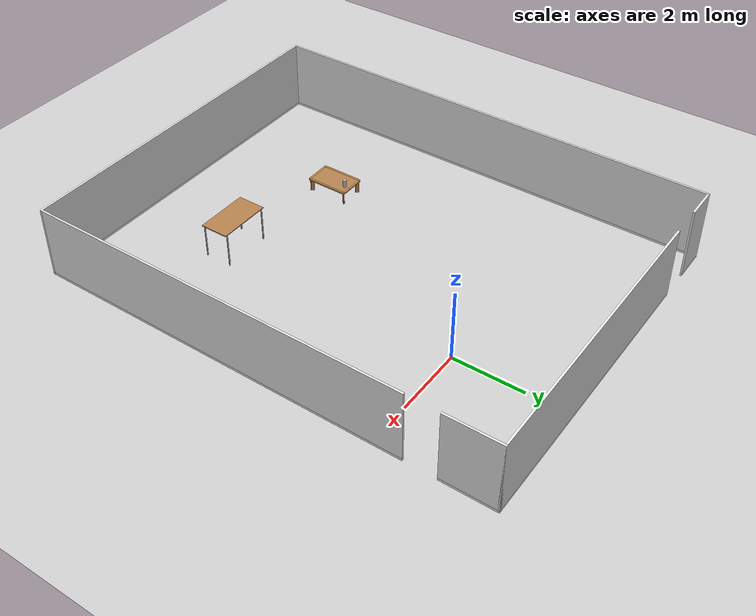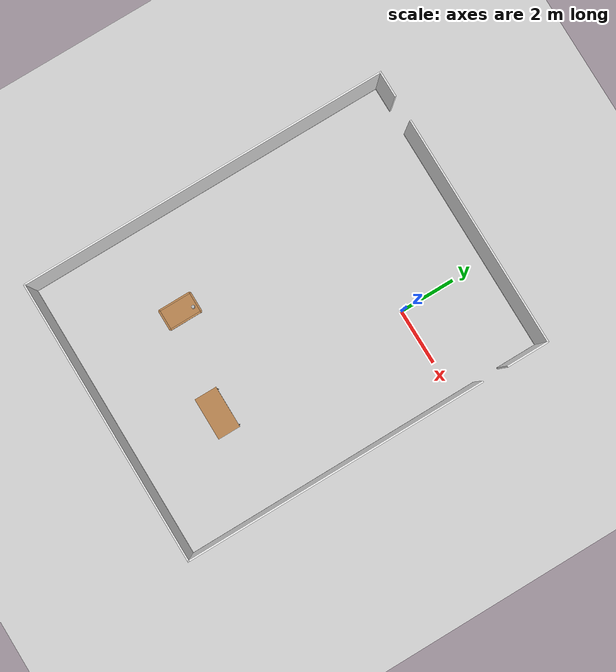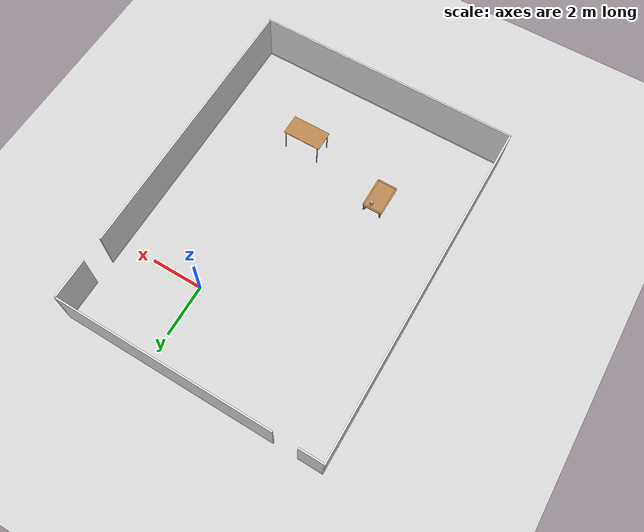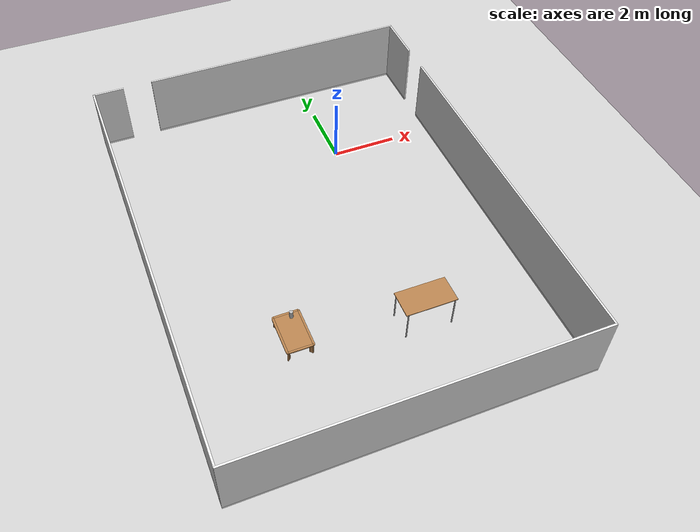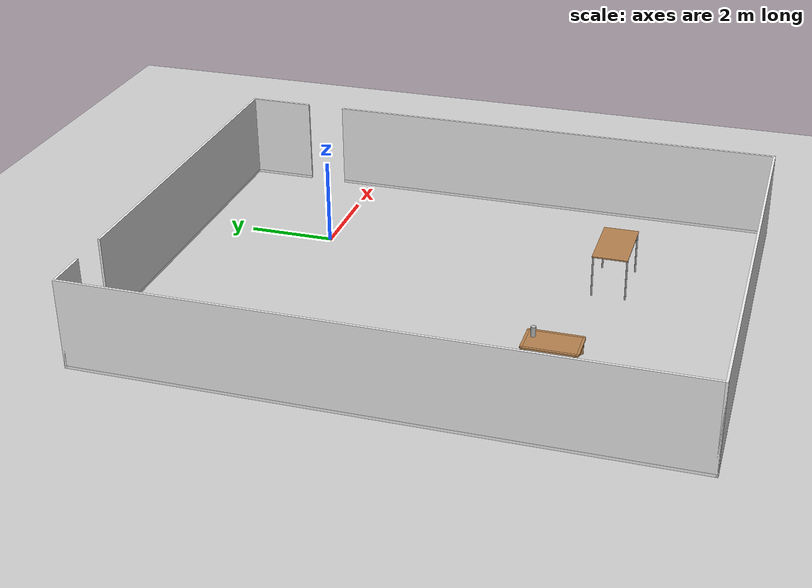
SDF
<sdf version="1.6">
 <world name="default">
  <light name="sun" type="directional">
   <pose>0 0 10 0 -0 0</pose>
   <diffuse>0.8 0.8 0.8 1</diffuse>
   <specular>0.2 0.2 0.2 1</specular>
   <attenuation>
    <range>1000</range>
    <constant>0.9</constant>
    <linear>0.01</linear>
    <quadratic>0.001</quadratic>
   </attenuation>
   <direction>-0.5 0.1 -0.9</direction>
  </light>
  <model name="ground_plane">
   <static>1</static>
   <link name="link">
    <collision name="collision">
     <geometry><plane><normal>0 0 1</normal><size>100 100</size></plane></geometry>
     <surface>
      <contact><collide_bitmask>65535</collide_bitmask></contact>
      <friction><ode><mu>100</mu><mu2>50</mu2></ode></friction>
     </surface>
    </collision>
    <visual name="visual">
     <cast_shadows>0</cast_shadows>
     <geometry><plane><normal>0 0 1</normal><size>100 100</size></plane></geometry>
     <material>
      <script><uri>file://media/materials/scripts/gazebo.material</uri><name>Gazebo/Grey</name></script>
     </material>
    </visual>
   </link>
  </model>
  <gravity>0 0 -9.8</gravity>
  <magnetic_field>6e-06 2.3e-05 -4.2e-05</magnetic_field>
  <atmosphere type="adiabatic"/>
  <physics name="default_physics" default="0" type="ode">
   <max_step_size>0.001</max_step_size>
   <real_time_factor>1</real_time_factor>
   <real_time_update_rate>1000</real_time_update_rate>
  </physics>
  <scene><ambient>0.4 0.4 0.4 1</ambient><background>0.7 0.7 0.7 1</background><shadows>1</shadows></scene>
  <spherical_coordinates>
   <surface_model>EARTH_WGS84</surface_model>
   <latitude_deg>0</latitude_deg>
   <longitude_deg>0</longitude_deg>
   <elevation>0</elevation>
   <heading_deg>0</heading_deg>
  </spherical_coordinates>
  <model name="full_outside_wall">
   <link name="link">
    <inertial>
     <mass>50</mass>
     <inertia><ixx>1</ixx><ixy>0</ixy><ixz>0</ixz><iyy>1</iyy><iyz>0</iyz><izz>1</izz></inertia>
    </inertial>
    <visual name="x00_13y00_bottom_frame">
     <pose>5.0375 -0.0275 0.05 0 -0 0</pose>
     <geometry><box><size>10.185 0.055 0.1</size></box></geometry>
     <material>
      <script><uri>model://base_materials/color/scripts</uri><name>hsr_color/white</name></script>
     </material>
    </visual>
    <collision name="x00_13y00_collision_bottom_frame">
     <pose>5.0375 -0.0275 0.05 0 -0 0</pose>
     <geometry><box><size>10.185 0.055 0.1</size></box></geometry>
    </collision>
    <visual name="wall_x00_13y00">
     <pose>5.0375 -0.0275 1.095 0 -0 0</pose>
     <geometry><box><size>10.185 0.055 1.99</size></box></geometry>
     <material>
      <script>
       <uri>model://base_materials/wall/scripts</uri>
       <uri>model://base_materials/wall/textures</uri>
       <name>wall/white_noise</name>
      </script>
     </material>
    </visual>
    <collision name="wall_x00_13y00">
     <pose>5.0375 -0.002 1.095 0 -0 0</pose>
     <geometry><box><size>10.08 0.055 1.99</size></box></geometry>
    </collision>
    <visual name="x00y00_15_bottom_frame">
     <pose>-0.0275 6.59 0.05 0 -0 0</pose>
     <geometry><box><size>0.055 13.29 0.1</size></box></geometry>
     <material>
      <script><uri>model://base_materials/color/scripts</uri><name>hsr_color/white</name></script>
     </material>
    </visual>
    <collision name="x00y00_15_collision_bottom_frame">
     <pose>-0.0275 6.59 0.05 0 -0 0</pose>
     <geometry><box><size>0.055 13.29 0.1</size></box></geometry>
    </collision>
    <visual name="wall_x00y00_15">
     <pose>-0.0275 6.59 1.095 0 -0 0</pose>
     <geometry><box><size>0.055 13.29 1.99</size></box></geometry>
     <material>
      <script>
       <uri>model://base_materials/wall/scripts</uri>
       <uri>model://base_materials/wall/textures</uri>
       <name>wall/white_noise</name>
      </script>
     </material>
    </visual>
    <collision name="wall_x00y00_x00y15">
     <pose>-0.002 6.59 1.095 0 -0 0</pose>
     <geometry><box><size>0.002 13.29 1.99</size></box></geometry>
    </collision>
    <visual name="x13y00_12_bottom_frame">
     <pose>10.1025 5.3725 0.05 0 -0 0</pose>
     <geometry><box><size>0.055 10.855 0.1</size></box></geometry>
     <material>
      <script><uri>model://base_materials/color/scripts</uri><name>hsr_color/white</name></script>
     </material>
    </visual>
    <collision name="x13y00_12_collision_bottom_frame">
     <pose>10.1025 5.3725 0.05 0 -0 0</pose>
     <geometry><box><size>0.055 10.855 0.1</size></box></geometry>
    </collision>
    <visual name="wall_x13y00_12">
     <pose>10.1025 5.3725 1.095 0 -0 0</pose>
     <geometry><box><size>0.055 10.855 1.99</size></box></geometry>
     <material>
      <script>
       <uri>model://base_materials/wall/scripts</uri>
       <uri>model://base_materials/wall/textures</uri>
       <name>wall/white_noise</name>
      </script>
     </material>
    </visual>
    <collision name="wall_x13y00_12">
     <pose>10.1025 5.3725 1.095 0 -0 0</pose>
     <geometry><box><size>0.055 10.855 1.99</size></box></geometry>
    </collision>
    <visual name="x13y14_16_bottom_frame">
     <pose>10.1025 12.4675 0.05 0 -0 0</pose>
     <geometry><box><size>0.055 1.535 0.1</size></box></geometry>
     <material>
      <script><uri>model://base_materials/color/scripts</uri><name>hsr_color/white</name></script>
     </material>
    </visual>
    <collision name="x13y14_16_collision_bottom_frame">
     <pose>10.1025 12.4675 0.05 0 -0 0</pose>
     <geometry><box><size>0.055 1.535 0.1</size></box></geometry>
    </collision>
    <visual name="wall_x13y14_x13y16">
     <pose>10.1025 12.4675 1.095 0 -0 0</pose>
     <geometry><box><size>0.055 1.535 1.99</size></box></geometry>
     <material>
      <script>
       <uri>model://base_materials/wall/scripts</uri>
       <uri>model://base_materials/wall/textures</uri>
       <name>wall/white_noise</name>
      </script>
     </material>
    </visual>
    <collision name="wall_x13y14_x13y16">
     <pose>10.1025 12.4675 1.095 0 -0 0</pose>
     <geometry><box><size>0.055 1.535 1.99</size></box></geometry>
    </collision>
    <visual name="x00_01y16_bottom_frame">
     <pose>0.4225 13.2075 0.05 0 -0 0</pose>
     <geometry><box><size>0.955 0.055 0.1</size></box></geometry>
     <material>
      <script><uri>model://base_materials/color/scripts</uri><name>hsr_color/white</name></script>
     </material>
    </visual>
    <collision name="x00_01y16_collision_bottom_frame">
     <pose>0.4225 13.2075 0.05 0 -0 0</pose>
     <geometry><box><size>0.955 0.055 0.1</size></box></geometry>
    </collision>
    <visual name="wall_x00_01y16">
     <pose>0.4225 13.2075 1.095 0 -0 0</pose>
     <geometry><box><size>0.955 0.055 1.99</size></box></geometry>
     <material>
      <script>
       <uri>model://base_materials/wall/scripts</uri>
       <uri>model://base_materials/wall/textures</uri>
       <name>wall/white_noise</name>
      </script>
     </material>
    </visual>
    <collision name="wall_x00_x01y16">
     <pose>0.4225 13.2075 1.095 0 -0 0</pose>
     <geometry><box><size>0.955 0.055 1.99</size></box></geometry>
    </collision>
    <visual name="x03_13y16_bottom_frame">
     <pose>5.965 13.2075 0.05 0 -0 0</pose>
     <geometry><box><size>8.33 0.05 0.1</size></box></geometry>
     <material>
      <script><uri>model://base_materials/color/scripts</uri><name>hsr_color/white</name></script>
     </material>
    </visual>
    <collision name="x03_13y16_collision_bottom_frame">
     <pose>5.965 13.2075 0.05 0 -0 0</pose>
     <geometry><box><size>8.33 0.05 0.1</size></box></geometry>
    </collision>
    <visual name="wall_x03_13y16">
     <pose>5.965 13.2075 1.095 0 -0 0</pose>
     <geometry><box><size>8.33 0.055 1.99</size></box></geometry>
     <material>
      <script>
       <uri>model://base_materials/wall/scripts</uri>
       <uri>model://base_materials/wall/textures</uri>
       <name>wall/white_noise</name>
      </script>
     </material>
    </visual>
    <collision name="wall_x03_13y16">
     <pose>5.965 13.2075 1.095 0 -0 0</pose>
     <geometry><box><size>8.33 0.055 1.99</size></box></geometry>
    </collision>
    <velocity_decay><linear>0</linear><angular>0</angular></velocity_decay>
   </link>
   <static>1</static>
   <pose>-6.84092 -9.99297 -0.050783 0 -0 0</pose>
  </model>
  <model name="table">
   <static>1</static>
   <link name="link">
    <collision name="surface">
     <pose>0 0 1 0 -0 0</pose>
     <geometry><box><size>1.5 0.8 0.03</size></box></geometry>
     <surface><friction><ode><mu>0.6</mu><mu2>0.6</mu2></ode></friction></surface>
    </collision>
    <visual name="visual1">
     <pose>0 0 1 0 -0 0</pose>
     <geometry><box><size>1.5 0.8 0.03</size></box></geometry>
     <material>
      <script><uri>file://media/materials/scripts/gazebo.material</uri><name>Gazebo/Wood</name></script>
     </material>
    </visual>
    <collision name="front_left_leg">
     <pose>0.68 0.38 0.5 0 -0 0</pose>
     <geometry><cylinder><radius>0.02</radius><length>1</length></cylinder></geometry>
    </collision>
    <visual name="front_left_leg">
     <pose>0.68 0.38 0.5 0 -0 0</pose>
     <geometry><cylinder><radius>0.02</radius><length>1</length></cylinder></geometry>
     <material>
      <script><uri>file://media/materials/scripts/gazebo.material</uri><name>Gazebo/Grey</name></script>
     </material>
    </visual>
    <collision name="front_right_leg">
     <pose>0.68 -0.38 0.5 0 -0 0</pose>
     <geometry><cylinder><radius>0.02</radius><length>1</length></cylinder></geometry>
    </collision>
    <visual name="front_right_leg">
     <pose>0.68 -0.38 0.5 0 -0 0</pose>
     <geometry><cylinder><radius>0.02</radius><length>1</length></cylinder></geometry>
     <material>
      <script><uri>file://media/materials/scripts/gazebo.material</uri><name>Gazebo/Grey</name></script>
     </material>
    </visual>
    <collision name="back_right_leg">
     <pose>-0.68 -0.38 0.5 0 -0 0</pose>
     <geometry><cylinder><radius>0.02</radius><length>1</length></cylinder></geometry>
    </collision>
    <visual name="back_right_leg">
     <pose>-0.68 -0.38 0.5 0 -0 0</pose>
     <geometry><cylinder><radius>0.02</radius><length>1</length></cylinder></geometry>
     <material>
      <script><uri>file://media/materials/scripts/gazebo.material</uri><name>Gazebo/Grey</name></script>
     </material>
    </visual>
    <collision name="back_left_leg">
     <pose>-0.68 0.38 0.5 0 -0 0</pose>
     <geometry><cylinder><radius>0.02</radius><length>1</length></cylinder></geometry>
    </collision>
    <visual name="back_left_leg">
     <pose>-0.68 0.38 0.5 0 -0 0</pose>
     <geometry><cylinder><radius>0.02</radius><length>1</length></cylinder></geometry>
     <material>
      <script><uri>file://media/materials/scripts/gazebo.material</uri><name>Gazebo/Grey</name></script>
     </material>
    </visual>
   </link>
   <pose>-0.247275 -6.92305 0 0 -0 0</pose>
  </model>
  <model name="kitchen_lowtable">
   <link name="link">
    <inertial>
     <mass>10</mass>
     <inertia><ixx>1</ixx><ixy>0</ixy><ixz>0</ixz><iyy>1</iyy><iyz>0</iyz><izz>1</izz></inertia>
    </inertial>
    <visual name="center_board">
     <pose>0 0 0.38 0 -0 0</pose>
     <geometry><box><size>0.68 1.13 0.04</size></box></geometry>
     <material>
      <script><uri>model://base_materials/wood/scripts/wood.material</uri><name>base_materials/wood</name></script>
     </material>
    </visual>
    <collision name="collision_center_board">
     <pose>0 0 0.38 0 -0 0</pose>
     <geometry><box><size>0.68 1.13 0.04</size></box></geometry>
    </collision>
    <visual name="front_board">
     <pose>0.37 0 0.38 0 -0 0</pose>
     <geometry><box><size>0.06 1.13 0.04</size></box></geometry>
     <material>
      <script><uri>model://base_materials/wood/scripts/wood.material</uri><name>base_materials/wood</name></script>
     </material>
    </visual>
    <collision name="collision_front_board">
     <pose>0.37 0 0.38 0 -0 0</pose>
     <geometry><box><size>0.06 1.13 0.04</size></box></geometry>
    </collision>
    <visual name="back_board">
     <pose>-0.37 0 0.38 0 -0 0</pose>
     <geometry><box><size>0.06 1.13 0.04</size></box></geometry>
     <material>
      <script><uri>model://base_materials/wood/scripts/wood.material</uri><name>base_materials/wood</name></script>
     </material>
    </visual>
    <collision name="collision_back_board">
     <pose>-0.37 0 0.38 0 -0 0</pose>
     <geometry><box><size>0.06 1.13 0.04</size></box></geometry>
    </collision>
    <visual name="right_board">
     <pose>0 0.595 0.38 0 -0 0</pose>
     <geometry><box><size>0.68 0.06 0.04</size></box></geometry>
     <material>
      <script><uri>model://base_materials/wood/scripts/wood.material</uri><name>base_materials/wood</name></script>
     </material>
    </visual>
    <collision name="collision_right_board">
     <pose>0 0.595 0.38 0 -0 0</pose>
     <geometry><box><size>0.68 0.06 0.04</size></box></geometry>
    </collision>
    <visual name="left_board">
     <pose>0 -0.595 0.38 0 -0 0</pose>
     <geometry><box><size>0.68 0.06 0.04</size></box></geometry>
     <material>
      <script><uri>model://base_materials/wood/scripts/wood.material</uri><name>base_materials/wood</name></script>
     </material>
    </visual>
    <collision name="collision_left_board">
     <pose>0 -0.595 0.38 0 -0 0</pose>
     <geometry><box><size>0.68 0.06 0.04</size></box></geometry>
    </collision>
    <visual name="front_right_corner_board">
     <pose>0.34 0.565 0.38 0 -0 0</pose>
     <geometry><cylinder><radius>0.06</radius><length>0.039</length></cylinder></geometry>
     <material>
      <script><uri>model://base_materials/wood/scripts/wood.material</uri><name>base_materials/wood</name></script>
     </material>
    </visual>
    <collision name="collision_front_right_corner_board">
     <pose>0.34 0.565 0.38 0 -0 0</pose>
     <geometry><cylinder><radius>0.06</radius><length>0.039</length></cylinder></geometry>
    </collision>
    <visual name="front_left_corner_board">
     <pose>0.34 -0.565 0.38 0 -0 0</pose>
     <geometry><cylinder><radius>0.06</radius><length>0.039</length></cylinder></geometry>
     <material>
      <script><uri>model://base_materials/wood/scripts/wood.material</uri><name>base_materials/wood</name></script>
     </material>
    </visual>
    <collision name="collision_front_left_corner_board">
     <pose>0.34 -0.565 0.38 0 -0 0</pose>
     <geometry><cylinder><radius>0.06</radius><length>0.039</length></cylinder></geometry>
    </collision>
    <visual name="front_back_right_corner_board">
     <pose>-0.34 0.565 0.38 0 -0 0</pose>
     <geometry><cylinder><radius>0.06</radius><length>0.039</length></cylinder></geometry>
     <material>
      <script><uri>model://base_materials/wood/scripts/wood.material</uri><name>base_materials/wood</name></script>
     </material>
    </visual>
    <collision name="collision_back_right_corner_board">
     <pose>-0.34 0.565 0.38 0 -0 0</pose>
     <geometry><cylinder><radius>0.06</radius><length>0.039</length></cylinder></geometry>
    </collision>
    <visual name="front_back_left_corner_board">
     <pose>-0.34 -0.565 0.38 0 -0 0</pose>
     <geometry><cylinder><radius>0.06</radius><length>0.039</length></cylinder></geometry>
     <material>
      <script><uri>model://base_materials/wood/scripts/wood.material</uri><name>base_materials/wood</name></script>
     </material>
    </visual>
    <collision name="collision_back_left_corner_board">
     <pose>-0.34 -0.565 0.38 0 -0 0</pose>
     <geometry><cylinder><radius>0.06</radius><length>0.039</length></cylinder></geometry>
    </collision>
    <visual name="front_left_corner_frame1">
     <pose>0.345858 -0.57086 0.18 0 -0 0</pose>
     <geometry><cylinder><radius>0.02</radius><length>0.36</length></cylinder></geometry>
     <material>
      <script><uri>model://base_materials/wood/scripts/wood.material</uri><name>base_materials/wood</name></script>
     </material>
    </visual>
    <collision name="collision_front_left_corner_frame1">
     <pose>0.345858 -0.57086 0.18 0 -0 0</pose>
     <geometry><cylinder><radius>0.02</radius><length>0.36</length></cylinder></geometry>
    </collision>
    <visual name="front_left_corner_frame2">
     <pose>0.317574 -0.54257 0.18 0 -0 0.7854</pose>
     <geometry><box><size>0.04 0.08 0.36</size></box></geometry>
     <material>
      <script><uri>model://base_materials/wood/scripts/wood.material</uri><name>base_materials/wood</name></script>
     </material>
    </visual>
    <collision name="collision_front_left_corner_frame2">
     <pose>0.317574 -0.54257 0.18 0 -0 0.7854</pose>
     <geometry><box><size>0.04 0.08 0.36</size></box></geometry>
    </collision>
    <visual name="front_left_corner_frame3">
     <pose>0.289289 -0.51429 0.18 0 -0 0</pose>
     <geometry><cylinder><radius>0.02</radius><length>0.36</length></cylinder></geometry>
     <material>
      <script><uri>model://base_materials/wood/scripts/wood.material</uri><name>base_materials/wood</name></script>
     </material>
    </visual>
    <collision name="collision_front_left_corner_frame3">
     <pose>0.289289 -0.51429 0.18 0 -0 0</pose>
     <geometry><cylinder><radius>0.02</radius><length>0.36</length></cylinder></geometry>
    </collision>
    <visual name="front_right_corner_frame1">
     <pose>0.345858 0.57086 0.18 0 -0 0</pose>
     <geometry><cylinder><radius>0.02</radius><length>0.36</length></cylinder></geometry>
     <material>
      <script><uri>model://base_materials/wood/scripts/wood.material</uri><name>base_materials/wood</name></script>
     </material>
    </visual>
    <collision name="collision_front_right_corner_frame1">
     <pose>0.345858 0.57086 0.18 0 -0 0</pose>
     <geometry><cylinder><radius>0.02</radius><length>0.36</length></cylinder></geometry>
    </collision>
    <visual name="front_right_corner_frame2">
     <pose>0.317574 0.54257 0.18 0 0 -0.7854</pose>
     <geometry><box><size>0.04 0.08 0.36</size></box></geometry>
     <material>
      <script><uri>model://base_materials/wood/scripts/wood.material</uri><name>base_materials/wood</name></script>
     </material>
    </visual>
    <collision name="collision_front_right_corner_frame2">
     <pose>0.317574 0.54257 0.18 0 0 -0.7854</pose>
     <geometry><box><size>0.04 0.08 0.36</size></box></geometry>
    </collision>
    <visual name="front_right_corner_frame3">
     <pose>0.289289 0.51429 0.18 0 -0 0</pose>
     <geometry><cylinder><radius>0.02</radius><length>0.36</length></cylinder></geometry>
     <material>
      <script><uri>model://base_materials/wood/scripts/wood.material</uri><name>base_materials/wood</name></script>
     </material>
    </visual>
    <collision name="collision_front_right_corner_frame3">
     <pose>0.289289 0.51429 0.18 0 -0 0</pose>
     <geometry><cylinder><radius>0.02</radius><length>0.36</length></cylinder></geometry>
    </collision>
    <visual name="back_left_corner_frame1">
     <pose>-0.345858 -0.57086 0.18 0 -0 0</pose>
     <geometry><cylinder><radius>0.02</radius><length>0.36</length></cylinder></geometry>
     <material>
      <script><uri>model://base_materials/wood/scripts/wood.material</uri><name>base_materials/wood</name></script>
     </material>
    </visual>
    <collision name="collision_back_left_corner_frame1">
     <pose>-0.345858 -0.57086 0.18 0 -0 0</pose>
     <geometry><cylinder><radius>0.02</radius><length>0.36</length></cylinder></geometry>
    </collision>
    <visual name="back_left_corner_frame2">
     <pose>-0.317574 -0.54257 0.18 0 0 -0.7854</pose>
     <geometry><box><size>0.04 0.08 0.36</size></box></geometry>
     <material>
      <script><uri>model://base_materials/wood/scripts/wood.material</uri><name>base_materials/wood</name></script>
     </material>
    </visual>
    <collision name="collision_back_left_corner_frame2">
     <pose>-0.317574 -0.54257 0.18 0 0 -0.7854</pose>
     <geometry><box><size>0.04 0.08 0.36</size></box></geometry>
    </collision>
    <visual name="back_left_corner_frame3">
     <pose>-0.289289 -0.51429 0.18 0 -0 0</pose>
     <geometry><cylinder><radius>0.02</radius><length>0.36</length></cylinder></geometry>
     <material>
      <script><uri>model://base_materials/wood/scripts/wood.material</uri><name>base_materials/wood</name></script>
     </material>
    </visual>
    <collision name="collision_back_left_corner_frame3">
     <pose>-0.289289 -0.51429 0.18 0 -0 0</pose>
     <geometry><cylinder><radius>0.02</radius><length>0.36</length></cylinder></geometry>
    </collision>
    <visual name="back_right_corner_frame1">
     <pose>-0.345858 0.57086 0.18 0 -0 0</pose>
     <geometry><cylinder><radius>0.02</radius><length>0.36</length></cylinder></geometry>
     <material>
      <script><uri>model://base_materials/wood/scripts/wood.material</uri><name>base_materials/wood</name></script>
     </material>
    </visual>
    <collision name="collision_back_right_corner_frame1">
     <pose>-0.345858 0.57086 0.18 0 -0 0</pose>
     <geometry><cylinder><radius>0.02</radius><length>0.36</length></cylinder></geometry>
    </collision>
    <visual name="back_right_corner_frame2">
     <pose>-0.317574 0.54257 0.18 0 -0 0.7854</pose>
     <geometry><box><size>0.04 0.08 0.36</size></box></geometry>
     <material>
      <script><uri>model://base_materials/wood/scripts/wood.material</uri><name>base_materials/wood</name></script>
     </material>
    </visual>
    <collision name="collision_back_right_corner_frame2">
     <pose>-0.317574 0.54257 0.18 0 -0 0.7854</pose>
     <geometry><box><size>0.04 0.08 0.36</size></box></geometry>
    </collision>
    <visual name="back_right_corner_frame3">
     <pose>-0.289289 0.51429 0.18 0 -0 0</pose>
     <geometry><cylinder><radius>0.02</radius><length>0.36</length></cylinder></geometry>
     <material>
      <script><uri>model://base_materials/wood/scripts/wood.material</uri><name>base_materials/wood</name></script>
     </material>
    </visual>
    <collision name="collision_back_right_corner_frame3">
     <pose>-0.289289 0.51429 0.18 0 -0 0</pose>
     <geometry><cylinder><radius>0.02</radius><length>0.36</length></cylinder></geometry>
    </collision>
    <velocity_decay><linear>0</linear><angular>0</angular></velocity_decay>
   </link>
   <static>1</static>
   <pose>-3.76879 -6.27667 0 0 -0 0</pose>
  </model>
  <model name="beer">
   <link name="link">
    <pose>0 0 0.115 0 -0 0</pose>
    <inertial>
     <mass>0.39</mass>
     <inertia><ixx>0.00058</ixx><ixy>0</ixy><ixz>0</ixz><iyy>0.00058</iyy><iyz>0</iyz><izz>0.00019</izz></inertia>
    </inertial>
    <collision name="collision">
     <geometry><cylinder><radius>0.055</radius><length>0.23</length></cylinder></geometry>
    </collision>
    <visual name="visual">
     <geometry><cylinder><radius>0.055</radius><length>0.23</length></cylinder></geometry>
     <material>
      <script>
       <uri>model://beer/materials/scripts</uri>
       <uri>model://beer/materials/textures</uri>
       <name>Beer/Diffuse</name>
      </script>
     </material>
    </visual>
   </link>
   <pose>-3.65304 -5.8344 0.399992 1e-06 -3.5e-05 -0.000152</pose>
  </model>
 </world>
</sdf>
